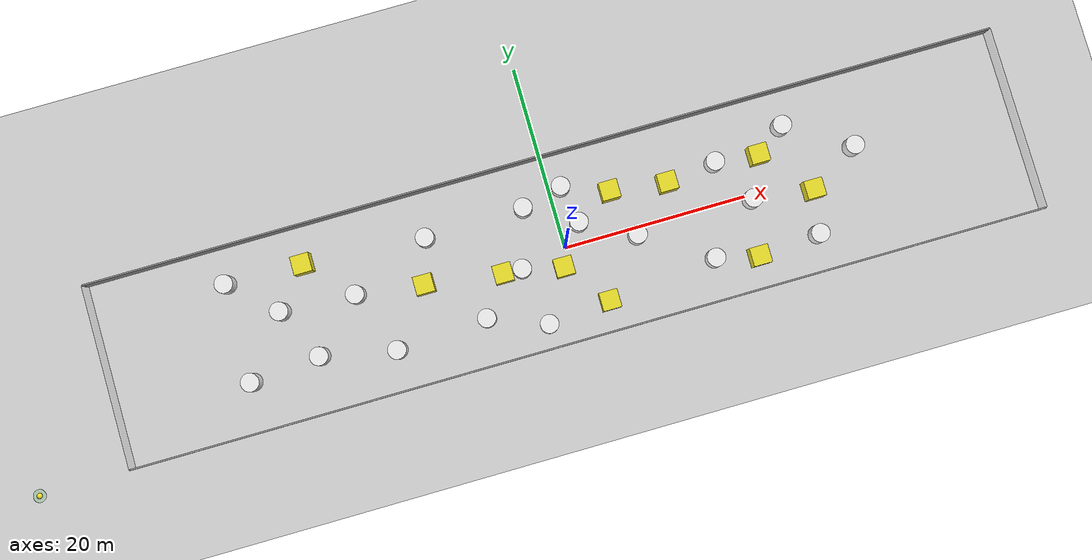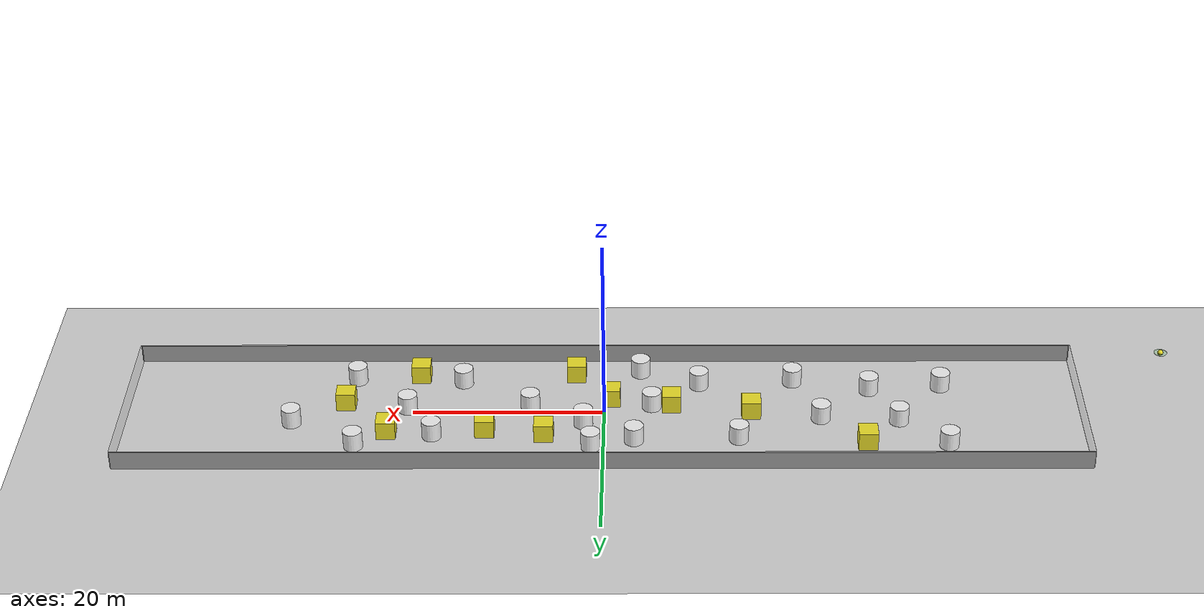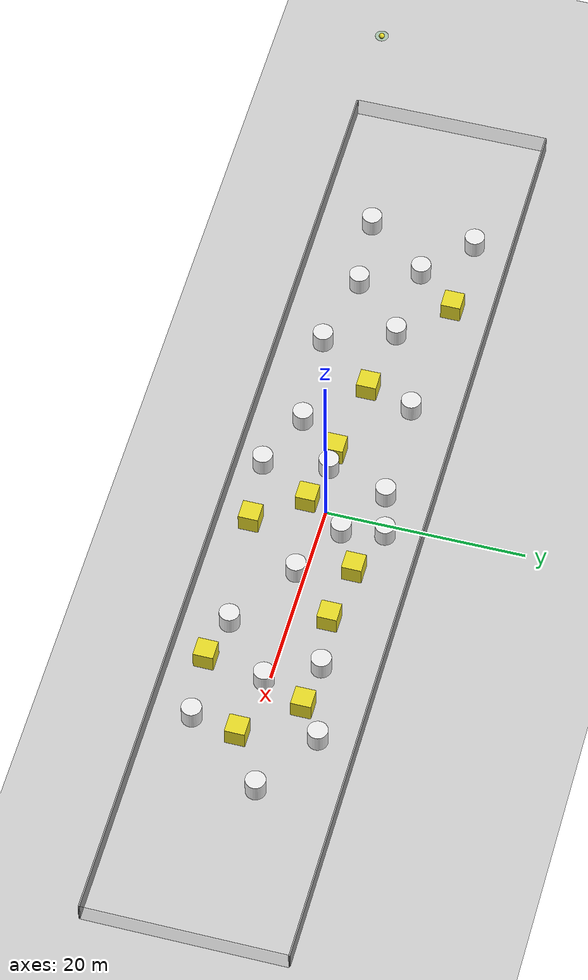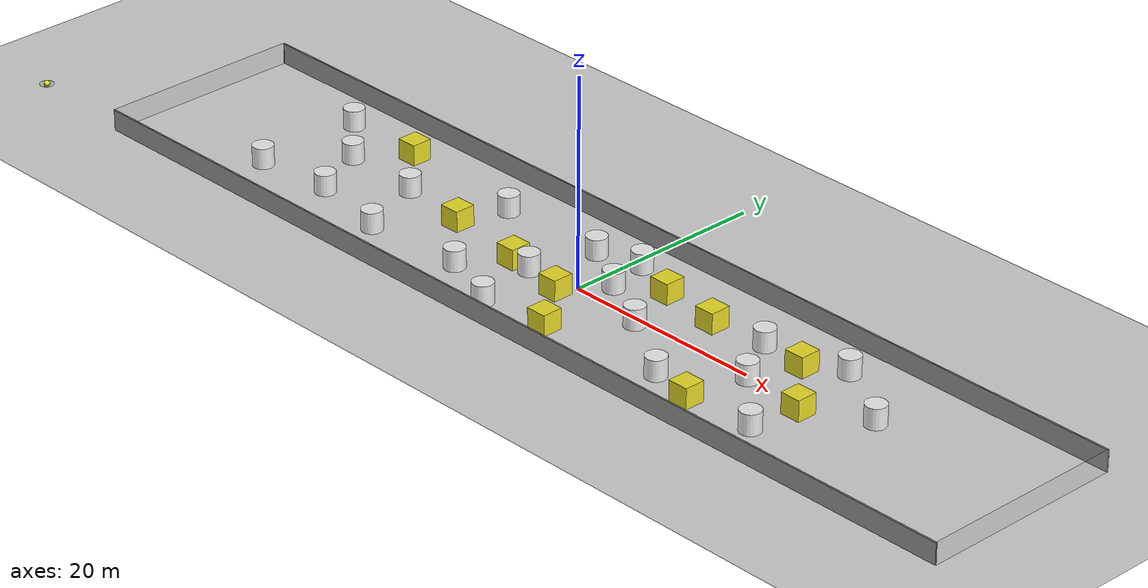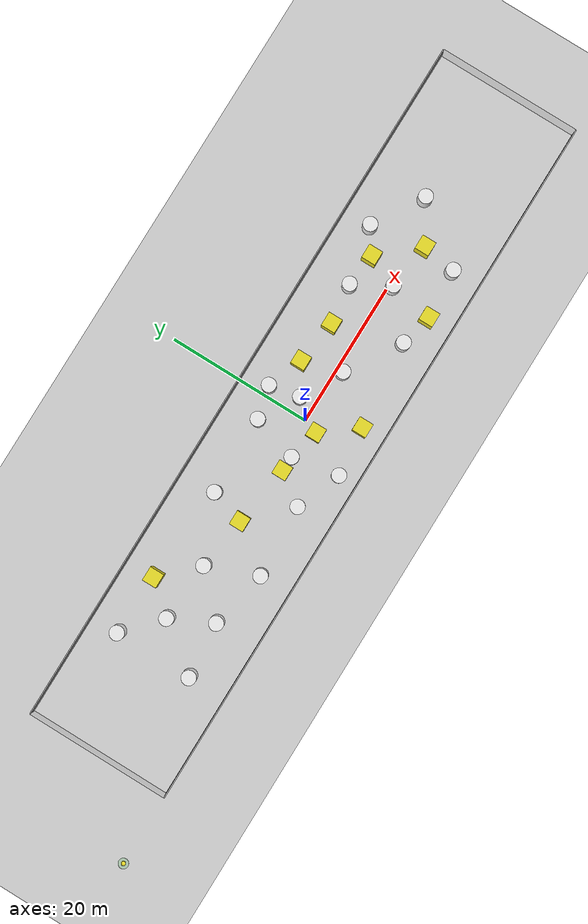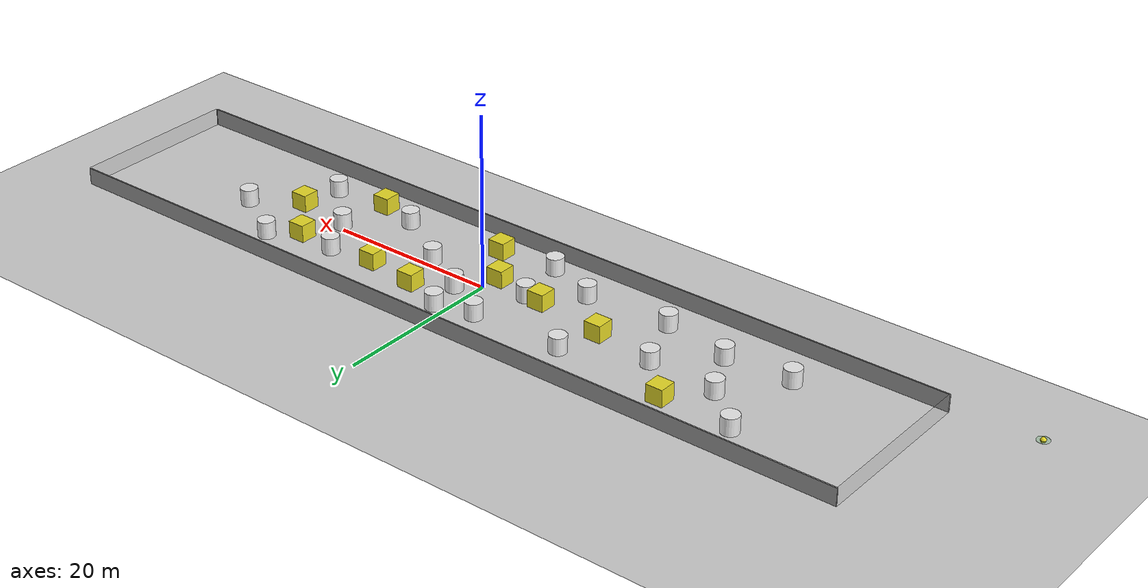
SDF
<?xml version="1.0" ?>
<sdf version="1.5">
  <world name="default">
   <light type="directional" name="sun">
      <cast_shadows>false</cast_shadows>
      <pose>0 0 100 0 0 0</pose>
      <diffuse>0.8 0.8 0.8 1</diffuse>
      <specular>0.9 0.9 0.9 1</specular>
      <attenuation>
        <range>1000</range>
        <constant>0.9</constant>
        <linear>0.01</linear>
        <quadratic>0.001</quadratic>
      </attenuation>
      <direction>0.2 0.2 -0.9</direction>
    </light>

    <!-- A ground plane -->
    <include>
      <uri>model://ground_plane</uri>
    </include>

    <!-- 初始视角 -->
    <gui fullscreen='0'>
      <camera name='user_camera'>
        <pose>-13.0 0.0 12.0 0 0.75 0.0</pose>
        <view_controller>orbit</view_controller>
      </camera>
    </gui>

    <!-- 地面 -->
    <physics type='ode'>
      <gravity>0 0 -9.8066</gravity>
      <ode>
        <solver>
          <type>quick</type>
          <iters>150</iters>
          <sor>1.3</sor>
          <use_dynamic_moi_rescaling>0</use_dynamic_moi_rescaling>
        </solver>
        <constraints>
          <cfm>0.00001</cfm>
          <erp>0.2</erp>
          <contact_max_correcting_vel>1000</contact_max_correcting_vel>
          <contact_surface_layer>0.01</contact_surface_layer>
        </constraints>
      </ode>
      <max_step_size>0.004</max_step_size>
      <real_time_factor>1000.0</real_time_factor>
      <real_time_update_rate>250</real_time_update_rate>
      <magnetic_field>6.0e-6 2.3e-5 -4.2e-5</magnetic_field>
    </physics>

    <model name='start_point'>
      <pose> -60 -10 1 0 0 0 </pose>
      <include>
        <uri>model://start_sphere</uri>
      </include>
    </model>
    <model name='goal_point'>
      <pose> -60 -10 1 0 0 0 </pose>
      <include>
        <uri>model://goal_sphere</uri>
      </include>
    </model>

    <model name='obs1'>
      <pose> -35.646200 -4.670380 1 0 0 0 </pose>
      <include>
        <uri>model://obs_cylinder</uri>
      </include>
    </model>
    <model name='obs2'>
     <pose> -35.646200 6.069430 1 0 0 0 </pose>
     <include>
        <uri>model://obs_cylinder</uri>
      </include>
    </model>
    <model name='obs3'>
     <pose> -30.808000 1.702810 1 0 0 0 </pose>
      <include>
        <uri>model://obs_cylinder</uri>
      </include>
    </model>
    <model name='obs4'>
     <pose> -28.000000 -4.000000 1 0 0 0 </pose>
      <include>
        <uri>model://obs_cylinder</uri>
      </include>
    </model>
    <model name='obs5'>
      <pose> -22.664400 1.230890 1 0 0 0 </pose>
      <include>
        <uri>model://obs_cylinder</uri>
      </include>
    </model>
    <model name='obs6'>
      <pose> -19.950200 -5.614230 1 0 0 0 </pose>
      <include>
        <uri>model://obs_cylinder</uri>
      </include>
    </model>
    <model name='obs7'>
      <pose> -14.000000 5.000000 1 0 0 0 </pose>
      <include>
        <uri>model://obs_cylinder</uri>
      </include>
    </model>
    <model name='obs8'>
      <pose> -10.000000 -5.000000 1 0 0 0 </pose>
      <include>
        <uri>model://obs_cylinder</uri>
      </include>
    </model>
    <model name='obs9'>
      <pose> -5.000000 -1.000000 1 0 0 0 </pose>
      <include>
        <uri>model://obs_cylinder</uri>
      </include>
    </model>
    <model name='obs10'>
      <pose> -3.825323 -7.394804 1 0 0 0 </pose>
      <include>
        <uri>model://obs_cylinder</uri>
      </include>
    </model>
    <model name='obs11'>
      <pose> -3.153527 5.221098 1 0 0 0 </pose>
      <include>
        <uri>model://obs_cylinder</uri>
      </include>
    </model>
    <model name='obs12'>
     <pose> 1.301852 6.314189 1 0 0 0 </pose>
     <include>
        <uri>model://obs_cylinder</uri>
      </include>
    </model>
    <model name='obs13'>
     <pose> 2.130947 2.130947 1 0 0 0 </pose>
     <include>
        <uri>model://obs_cylinder</uri>
      </include>
    </model>
    <model name='obs14'>
     <pose> 7.748865 -0.874757 1 0 0 0 </pose>
      <include>
        <uri>model://obs_cylinder</uri>
      </include>
    </model>
    <model name='obs15'>
     <pose> 15.000000 -5.500590 1 0 0 0 </pose>
      <include>
        <uri>model://obs_cylinder</uri>
      </include>
    </model>
    <model name='obs16'>
      <pose> 17.792978 4.348225 1 0 0 0 </pose>
      <include>
        <uri>model://obs_cylinder</uri>
      </include>
    </model>
    <model name='obs17'>
      <pose> 25.740013 6.146459 1 0 0 0 </pose>
      <include>
        <uri>model://obs_cylinder</uri>
      </include>
    </model>
    <model name='obs18'>
      <pose> 26.309447 -6.035352 1 0 0 0 </pose>
      <include>
        <uri>model://obs_cylinder</uri>
      </include>
    </model>
    <model name='obs19'>
      <pose> 20.597746 -0.537453 1 0 0 0 </pose>
      <include>
        <uri>model://obs_cylinder</uri>
      </include>
    </model>
    <model name='obs20'>
      <pose> 32.552760 1.959567 1 0 0 0 </pose>
      <include>
        <uri>model://obs_cylinder</uri>
      </include>
    </model>

    <model name='obs21'>
      <pose> -27.260089 5.883774 1 0 0 0 </pose>
      <include>
        <uri>model://obs_box</uri>
      </include>
    </model>
    <model name='obs22'>
      <pose> -15.411307 0.266554 1 0 0 0 </pose>
      <include>
        <uri>model://obs_box</uri>
      </include>
    </model>
    <model name='obs23'>
      <pose> -0.689158 -2.001860 1 0 0 0 </pose>
      <include>
        <uri>model://obs_box</uri>
      </include>
    </model>
    <model name='obs24'>
      <pose> 2.998025 -6.730578 1 0 0 0 </pose>
      <include>
        <uri>model://obs_box</uri>
      </include>
    </model>
    <model name='obs25'>
      <pose> 6.179663 4.479759 1 0 0 0 </pose>
      <include>
        <uri>model://obs_box</uri>
      </include>
    </model>
    <model name='obs26'>
      <pose> 12.328382 3.669601 1 0 0 0 </pose>
      <include>
        <uri>model://obs_box</uri>
      </include>
    </model>
    <model name='obs27'>
      <pose> 19.558943 -6.555573 1 0 0 0 </pose>
      <include>
        <uri>model://obs_box</uri>
      </include>
    </model>
    <model name='obs28'>
      <pose> 22.505123 3.864954 1 0 0 0 </pose>
      <include>
        <uri>model://obs_box</uri>
      </include>
    </model>
    <model name='obs29'>
      <pose> -7.067982 -0.907535 1 0 0 0 </pose>
      <include>
        <uri>model://obs_box</uri>
      </include>
    </model>
    <model name='obs30'>
      <pose> 27.105181 -1.334347 1 0 0 0 </pose>
      <include>
        <uri>model://obs_box</uri>
      </include>
    </model>

    <model name='waypoint0'>
      <pose> -60 -10 1 0 0 0 </pose>
      <include>
        <uri>model://waypoint</uri>
      </include>
    </model>
   <model name='waypoint1'>
      <pose> -60 -10 1 0 0 0 </pose>
      <include>
        <uri>model://waypoint</uri>
      </include>
    </model>
    <model name='waypoint2'>
      <pose> -60 -10 1 0 0 0 </pose>
      <include>
        <uri>model://waypoint</uri>
      </include>
    </model>
    <model name='waypoint3'>
      <pose> -60 -10 1 0 0 0 </pose>
      <include>
        <uri>model://waypoint</uri>
      </include>
    </model>
    <model name='waypoint4'>
      <pose> -60 -10 1 0 0 0 </pose>
      <include>
        <uri>model://waypoint</uri>
      </include>
    </model>
    <model name='waypoint5'>
      <pose> -60 -10 1 0 0 0 </pose>
      <include>
        <uri>model://waypoint</uri>
      </include>
    </model>
    <model name='waypoint6'>
      <pose> -60 -10 1 0 0 0 </pose>
      <include>
        <uri>model://waypoint</uri>
      </include>
    </model>
    <model name='waypoint7'>
      <pose> -60 -10 1 0 0 0 </pose>
      <include>
        <uri>model://waypoint</uri>
      </include>
    </model>
    <model name='waypoint8'>
      <pose> -60 -10 1 0 0 0 </pose>
      <include>
        <uri>model://waypoint</uri>
      </include>
    </model>
    <model name='waypoint9'>
      <pose> -60 -10 1 0 0 0 </pose>
      <include>
        <uri>model://waypoint</uri>
      </include>
    </model>
    <model name='waypoint10'>
      <pose> -60 -10 1 0 0 0 </pose>
      <include>
        <uri>model://waypoint</uri>
      </include>
    </model>
    <model name='waypoint11'>
      <pose> -60 -10 1 0 0 0 </pose>
      <include>
        <uri>model://waypoint</uri>
      </include>
    </model>
    <model name='waypoint12'>
      <pose> -60 -10 1 0 0 0 </pose>
      <include>
        <uri>model://waypoint</uri>
      </include>
    </model>
    <model name='waypoint13'>
      <pose> -60 -10 1 0 0 0 </pose>
      <include>
        <uri>model://waypoint</uri>
      </include>
    </model>
    <model name='waypoint14'>
      <pose> -60 -10 1 0 0 0 </pose>
      <include>
        <uri>model://waypoint</uri>
      </include>
    </model>
    <model name='waypoint15'>
      <pose> -60 -10 1 0 0 0 </pose>
      <include>
        <uri>model://waypoint</uri>
      </include>
    </model>
    <model name='waypoint16'>
      <pose> -60 -10 1 0 0 0 </pose>
      <include>
        <uri>model://waypoint</uri>
      </include>
    </model>
    <model name='waypoint17'>
      <pose> -60 -10 1 0 0 0 </pose>
      <include>
        <uri>model://waypoint</uri>
      </include>
    </model>
    <model name='waypoint18'>
      <pose> -60 -10 1 0 0 0 </pose>
      <include>
        <uri>model://waypoint</uri>
      </include>
    </model>
    <model name='waypoint19'>
      <pose> -60 -10 1 0 0 0 </pose>
      <include>
        <uri>model://waypoint</uri>
      </include>
    </model>
    <model name='waypoint20'>
      <pose> -60 -10 1 0 0 0 </pose>
      <include>
        <uri>model://waypoint</uri>
      </include>
    </model>

    <model name='wall1'>
      <!-- 之前设置为0 -10 1 0 0 0 -->
      <pose> 0 -10 1 0 0 0 </pose>
      <include>
        <uri>model://obs_wall</uri>
      </include>
    </model>
    <model name='wall2'>
      <!-- 之前设置为0 10 1 0 0 0 -->
      <pose> 0 10 1 0 0 0 </pose>
      <include>
        <uri>model://obs_wall</uri>
      </include>
    </model>
    <model name='wall3'>
      <!-- 之前设置为-15 0 1 0 0 0 -->
      <pose> -50 0 1 0 0 0 </pose>
      <include>
        <uri>model://obs_wall_x</uri>
      </include>
    </model>
    <model name='wall4'>
      <!-- 之前设置为15 0 1 0 0 0 -->
      <pose> 50 0 1 0 0 0 </pose>
      <include>
        <uri>model://obs_wall_x</uri>
      </include>
    </model>

  </world>
</sdf>

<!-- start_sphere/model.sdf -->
<sdf version='1.6'>
  <model name='start_sphere'>
    <link name='link'>
      <inertial>
        <mass>0.1</mass>
        <pose frame=''>0 0 0 0 -0 0</pose>
      </inertial>
      <self_collide>0</self_collide>
      <enable_wind>0</enable_wind>
      <kinematic>0</kinematic>
      <pose frame=''>0 0 0 0 -0 0</pose>
      <gravity>0</gravity>
      <visual name='visual'>
        <geometry>
          <sphere>
            <radius>0.3</radius>
          </sphere>
        </geometry>
        <material>
          <script>
            <name>Gazebo/Yellow</name>
            <uri>file://media/materials/scripts/gazebo.material</uri>
          </script>
          <shader type='pixel'/>
        </material>
        <pose frame=''>0 0 0 0 -0 0</pose>
        <transparency>0</transparency>
        <cast_shadows>1</cast_shadows>
      </visual>
    </link>
    <static>0</static>
    <allow_auto_disable>1</allow_auto_disable>
  </model>
</sdf>

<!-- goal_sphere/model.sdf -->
<sdf version='1.6'>
  <model name='goal_sphere'>
    <link name='link'>
      <inertial>
        <mass>0.1</mass>
        <pose frame=''>0 0 0 0 -0 0</pose>
      </inertial>
      <self_collide>0</self_collide>
      <enable_wind>0</enable_wind>
      <kinematic>0</kinematic>
      <pose frame=''>0 0 0 0 -0 0</pose>
      <gravity>0</gravity>
      <visual name='visual'>
        <geometry>
          <sphere>
            <radius>0.3</radius>
          </sphere>
        </geometry>
        <material>
          <script>
            <name>Gazebo/Green</name>
            <uri>file://media/materials/scripts/gazebo.material</uri>
          </script>
          <shader type='pixel'/>
        </material>
        <pose frame=''>0 0 0 0 -0 0</pose>
        <transparency>0</transparency>
        <cast_shadows>1</cast_shadows>
      </visual>
    </link>
    <static>0</static>
    <allow_auto_disable>1</allow_auto_disable>
  </model>
</sdf>

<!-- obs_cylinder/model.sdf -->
<sdf version='1.6'>
  <model name='obs_cylinder'>
    <link name='link'>
      <inertial>
        <mass>100</mass>
        <pose frame=''>0 0 0 0 -0 0</pose>
      </inertial>
      <self_collide>0</self_collide>
      <enable_wind>0</enable_wind>
      <kinematic>0</kinematic>
      <pose frame=''>0 0 0 0 -0 0</pose>
      <gravity>1</gravity>
      <visual name='visual'>
        <geometry>
          <cylinder>
            <radius>1</radius>
            <length>2</length>
          </cylinder>
        </geometry>
        <material>
          <script>
            <name>Gazebo/White</name>
            <uri>file://media/materials/scripts/gazebo.material</uri>
          </script>
          <shader type='pixel'/>
        </material>
        <pose frame=''>0 0 0 0 -0 0</pose>
        <transparency>0</transparency>
        <cast_shadows>1</cast_shadows>
      </visual>
      <collision name='collision'>
        <laser_retro>0</laser_retro>
        <max_contacts>10</max_contacts>
        <pose frame=''>0 0 0 0 -0 0</pose>
        <geometry>
          <cylinder>
            <radius>1</radius>
            <length>2</length>
          </cylinder>
        </geometry>
      </collision>
    </link>
    <static>0</static>
    <allow_auto_disable>1</allow_auto_disable>
  </model>
</sdf>

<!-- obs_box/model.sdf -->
<sdf version='1.6'>
  <model name='obs_box'>
    <link name='link'>
      <inertial>
        <mass>100</mass>
        <pose frame=''>0 0 0 0 -0 0</pose>
      </inertial>
      <self_collide>0</self_collide>
      <enable_wind>0</enable_wind>
      <kinematic>0</kinematic>
      <pose frame=''>0 0 0 0 -0 0</pose>
      <gravity>1</gravity>
      <visual name='visual'>
        <geometry>
          <box>
            <size>2 2 2</size>
          </box>
        </geometry>
        <material>
          <script>
            <name>Gazebo/Yellow</name>
            <uri>file://media/materials/scripts/gazebo.material</uri>
          </script>
          <shader type='pixel'/>
        </material>
        <pose frame=''>0 0 0 0 -0 0</pose>
        <transparency>0</transparency>
        <cast_shadows>1</cast_shadows>
      </visual>
      <collision name='collision'>
        <laser_retro>0</laser_retro>
        <max_contacts>10</max_contacts>
        <pose frame=''>0 0 0 0 -0 0</pose>
        <geometry>
          <box>
            <size>2 2 2</size>
          </box>
        </geometry>
      </collision>
    </link>
    <static>0</static>
    <allow_auto_disable>1</allow_auto_disable>
  </model>
</sdf>

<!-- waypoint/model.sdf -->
<sdf version='1.6'>
  <model name='waypoint'>
    <link name='link'>
      <inertial>
        <mass>0.1</mass>
        <pose frame=''>0 0 0 0 -0 0</pose>
      </inertial>
      <self_collide>0</self_collide>
      <enable_wind>0</enable_wind>
      <kinematic>0</kinematic>
      <pose frame=''>0 0 0 0 -0 0</pose>
      <gravity>0</gravity>
      <visual name='visual'>
        <geometry>
          <cylinder>
            <radius>0.7</radius>
            <length>0.01</length>
          </cylinder>
        </geometry>
        <material>
          <script>
            <name>Gazebo/Green</name>
            <uri>file://media/materials/scripts/gazebo.material</uri>
          </script>
          <shader type='pixel'/>
        </material>
        <pose frame=''>0 0 0 0 -0 0</pose>
        <transparency>0.8</transparency>
        <cast_shadows>1</cast_shadows>
      </visual>
    </link>
    <static>0</static>
    <allow_auto_disable>1</allow_auto_disable>
  </model>
</sdf>

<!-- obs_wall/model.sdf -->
<sdf version='1.6'>
  <model name="obs_wall">
    <pose frame=''>0 0 0 0 -0 0</pose>
    <static>true</static>
    <link name="wall_link">
        <inertial>
          <mass>100</mass>
        </inertial>
        <collision name="my_collision">
          <geometry>
            <box>
              <!-- 之前设置为30 0.15 2 -->
              <size>100 0.15 2</size>
            </box>
          </geometry>
        </collision>
        <visual name="my_visual">
          <geometry>
            <box>
              <!-- 之前设置为30 0.15 2 -->
              <size>100 0.15 2</size>
            </box>
          </geometry>
          <material>
            <script>
              <uri>file://media/materials/scripts/gazebo.material</uri>
              <name>Gazebo/Gray</name>
            </script>
            <ambient>1 1 1 1</ambient>
          </material>
        </visual>
    </link>
  </model>
</sdf>

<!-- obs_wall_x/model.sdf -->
<sdf version='1.6'>
  <model name="obs_wall_x">
    <pose frame=''>0 0 0 0 -0 0</pose>
    <static>true</static>
    <link name="wall_link">
        <inertial>
          <mass>100</mass>
        </inertial>
        <collision name="my_collision">
          <laser_retro>0</laser_retro>
          <max_contacts>10</max_contacts>
          <pose frame=''>0 0 0 0 -0 0</pose>
          <geometry>
            <box>
              <!-- 之前设置为0.15 20 2 -->
              <size>0.15 20 2</size>
            </box>
          </geometry>
        </collision>
        <visual name="my_visual">
          <geometry>
            <box>
              <!-- 之前设置为0.15 20 2 -->
              <size>0.15 20 2</size>
            </box>
          </geometry>
          <material>
            <script>
              <uri>file://media/materials/scripts/gazebo.material</uri>
              <name>Gazebo/Gray</name>
            </script>
            <ambient>1 1 1 1</ambient>
          </material>
          <transparency>0.8</transparency>
        </visual>
    </link>
  </model>
</sdf>
